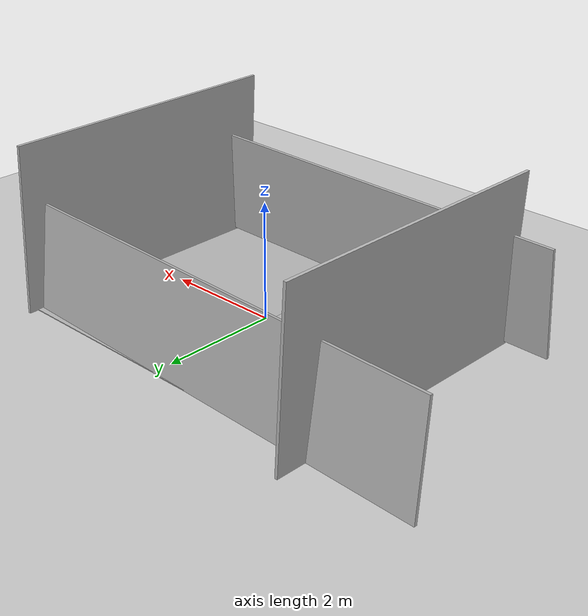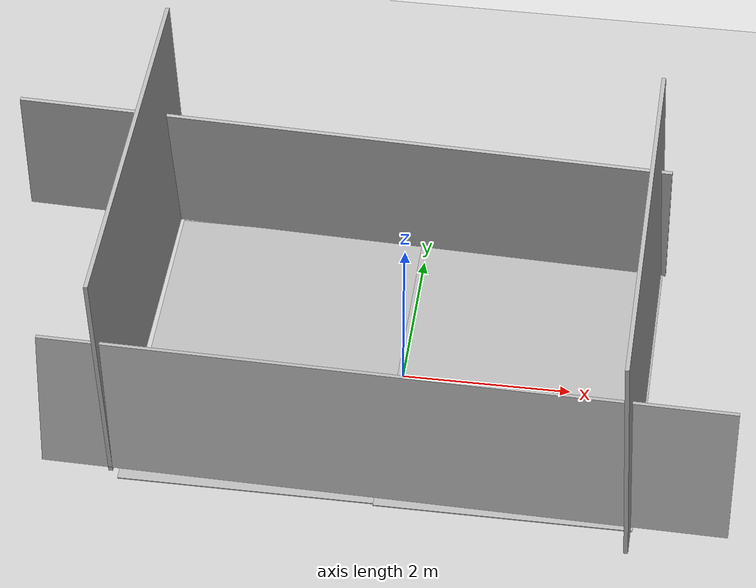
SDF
<sdf version="1.5">
 <world name="default">
  <model name="ground_plane">
   <static>1</static>
   <link name="link">
    <collision name="collision">
     <geometry><plane><normal>0 0 1</normal><size>100 100</size></plane></geometry>
     <surface><friction><ode><mu>100</mu><mu2>50</mu2></ode></friction></surface>
    </collision>
    <visual name="visual">
     <cast_shadows>0</cast_shadows>
     <geometry><plane><normal>0 0 1</normal><size>100 100</size></plane></geometry>
     <material>
      <script><uri>file://media/materials/scripts/gazebo.material</uri><name>Gazebo/Grey</name></script>
     </material>
    </visual>
    <velocity_decay><linear>0</linear><angular>0</angular></velocity_decay>
   </link>
  </model>
  <light name="sun" type="directional">
   <pose>0 0 10 0 -0 0</pose>
   <diffuse>0.8 0.8 0.8 1</diffuse>
   <specular>0.2 0.2 0.2 1</specular>
   <attenuation>
    <range>1000</range>
    <constant>0.9</constant>
    <linear>0.01</linear>
    <quadratic>0.001</quadratic>
   </attenuation>
   <direction>-0.5 0.1 -0.9</direction>
  </light>
  <physics name="default_physics" default="0" type="ode">
   <max_step_size>0.001</max_step_size>
   <real_time_factor>1</real_time_factor>
   <real_time_update_rate>1000</real_time_update_rate>
   <gravity>0 0 -9.8</gravity>
   <magnetic_field>5.5645e-06 2.28758e-05 -4.23884e-05</magnetic_field>
  </physics>
  <scene><ambient>0.4 0.4 0.4 1</ambient><background>0.7 0.7 0.7 1</background><shadows>1</shadows></scene>
  <spherical_coordinates>
   <surface_model>EARTH_WGS84</surface_model>
   <latitude_deg>0</latitude_deg>
   <longitude_deg>0</longitude_deg>
   <elevation>0</elevation>
   <heading_deg>0</heading_deg>
  </spherical_coordinates>
  <model name="rpg_streets2">
   <static>1</static>
   <link name="body">
    <visual name="visual">
     <geometry><box><size>3 4.5 0.05</size></box></geometry>
     <material><script><uri>model://rpg_streets2</uri><name>RPGStreets2/Diffuse</name></script></material>
    </visual>
    <velocity_decay><linear>0</linear><angular>0</angular></velocity_decay>
   </link>
   <pose>-1.57455 0.118025 -0.022014 0 -0 0</pose>
  </model>
  <model name="rpg_streets2_clone">
   <static>1</static>
   <link name="body">
    <visual name="visual">
     <geometry><box><size>3 4.5 0.05</size></box></geometry>
     <material><script><uri>model://rpg_streets2</uri><name>RPGStreets2/Diffuse</name></script></material>
    </visual>
    <velocity_decay><linear>0</linear><angular>0</angular></velocity_decay>
   </link>
   <pose>1.42377 0.093206 -0.022014 0 -0 0</pose>
  </model>
  <light name="user_point_light_0" type="point">
   <pose>-1.59996 1 1 0 -0 0</pose>
   <diffuse>0.5 0.5 0.5 1</diffuse>
   <specular>0.1 0.1 0.1 1</specular>
   <attenuation>
    <range>20</range>
    <constant>0.5</constant>
    <linear>0.01</linear>
    <quadratic>0.001</quadratic>
   </attenuation>
   <cast_shadows>0</cast_shadows>
   <direction>0 0 -1</direction>
  </light>
  <light name="user_directional_light_0" type="directional">
   <pose>0 1.53235 0.183464 -1.63784 0 0</pose>
   <diffuse>0.5 0.5 0.5 1</diffuse>
   <specular>0.1 0.1 0.1 1</specular>
   <direction>0.1 0.1 -0.9</direction>
   <attenuation>
    <range>20</range>
    <constant>0.5</constant>
    <linear>0.01</linear>
    <quadratic>0.001</quadratic>
   </attenuation>
  </light>
  <light name="user_point_light_1" type="point">
   <pose>1 0.556291 1 0 -0 0</pose>
   <diffuse>0.5 0.5 0.5 1</diffuse>
   <specular>0.1 0.1 0.1 1</specular>
   <attenuation>
    <range>20</range>
    <constant>0.5</constant>
    <linear>0.01</linear>
    <quadratic>0.001</quadratic>
   </attenuation>
   <cast_shadows>0</cast_shadows>
   <direction>0 0 -1</direction>
  </light>
  <light name="user_point_light_2" type="point">
   <pose>-1 -1 1 0 -0 0</pose>
   <diffuse>0.5 0.5 0.5 1</diffuse>
   <specular>0.1 0.1 0.1 1</specular>
   <attenuation>
    <range>20</range>
    <constant>0.5</constant>
    <linear>0.01</linear>
    <quadratic>0.001</quadratic>
   </attenuation>
   <cast_shadows>0</cast_shadows>
   <direction>0 0 -1</direction>
  </light>
  <model name="skyline1">
   <static>1</static>
   <link name="body">
    <visual name="visual">
     <geometry><box><size>1.85 8 0.05</size></box></geometry>
     <material><script><uri>model://skyline1</uri><name>NewYork/Diffuse</name></script></material>
    </visual>
   </link>
   <pose>0.014685 -1.99043 0.967741 3.14159 -1.50161 1.55172</pose>
  </model>
  <model name="skyline3">
   <static>1</static>
   <link name="body">
    <visual name="visual">
     <geometry><box><size>3 5 0.05</size></box></geometry>
     <material><script><uri>model://skyline3</uri><name>KansasCity/Diffuse</name></script></material>
    </visual>
   </link>
   <pose>2.8186 0 1.38154 3.14159 -1.52839 3.14159</pose>
  </model>
  <model name="skyline3_0">
   <static>1</static>
   <link name="body">
    <visual name="visual">
     <geometry><box><size>3 5 0.05</size></box></geometry>
     <material><script><uri>model://skyline3</uri><name>KansasCity/Diffuse</name></script></material>
    </visual>
   </link>
   <pose>-3.23083 0.482606 1.38581 0 -1.51741 3.135</pose>
  </model>
  <model name="skyline1_0">
   <static>1</static>
   <link name="body">
    <visual name="visual">
     <geometry><box><size>1.85 8 0.05</size></box></geometry>
     <material><script><uri>model://skyline1</uri><name>NewYork/Diffuse</name></script></material>
    </visual>
   </link>
   <pose>-1.04055 2.27787 0.873033 -3.14159 -1.48279 -1.60563</pose>
  </model>
 </world>
</sdf>
